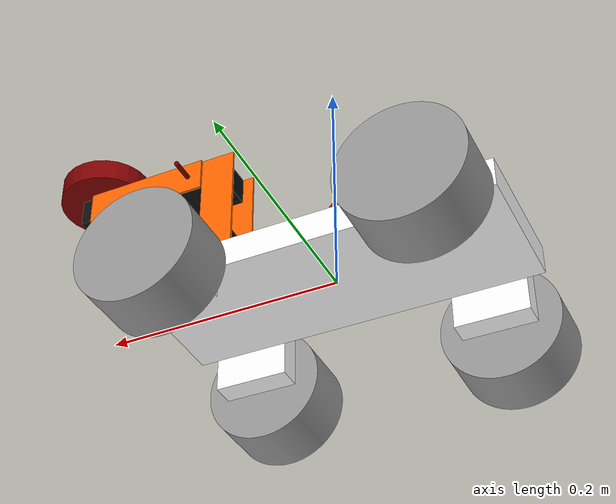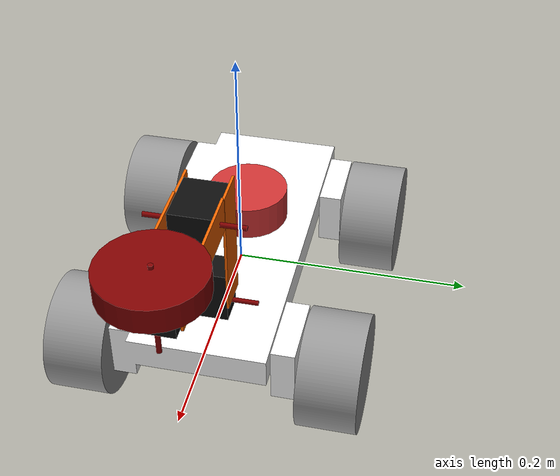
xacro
<?xml version="1.0"?>
<robot xmlns:xacro="http://www.ros.org/wiki/xacro">

    <xacro:include filename="lidar.xacro" />
    <xacro:include filename="wheels.xacro" />
    <xacro:include filename="arm.xacro" />

    <material name="chassis_material">
        <color rgba="1.0 1.0 1.0 1.0" />
    </material>

    <material name="wheel_material">
        <color rgba="0.6 0.6 0.6 1.0" />
    </material>

    <link name="base_link"/>

    <joint name="base_footprint_joint" type="fixed">
        <parent link="base_link"/>
        <child link="base_footprint"/>
        <origin xyz="0 0 0" rpy="0 0 0"/>
    </joint>

    <link name="base_footprint"/>

    <joint name="chassis_joint" type="fixed">
        <parent link="base_link"/>
        <child link="chassis"/>
        <origin xyz="0 0 0.0" rpy="0 0 ${-pi/2}"/>
    </joint>

    <link name="chassis">
        <inertial>
            <origin xyz="-7.066717348492194e-05 3.485618129802738e-05 0.00889428874586655" rpy="0 0 0"/>
            <mass value="2.985747783671821"/>
            <inertia ixx="0.025172" iyy="0.005971" izz="0.030362" ixy="-6e-06" iyz="2e-06" ixz="-2e-06"/>
        </inertial>
        <visual>
            <origin xyz="0 0 0" rpy="0 0 0"/>
            <geometry>
                <mesh filename="package://quac/meshes/base_link.stl" scale="${mesh_scale} ${mesh_scale} ${mesh_scale}"/>
            </geometry>
            <material name="chassis_material"/>
        </visual>
        <collision>
            <origin xyz="0 0 0" rpy="0 0 0"/>
            <geometry>
                <mesh filename="package://quac/meshes/base_link.stl" scale="${mesh_scale} ${mesh_scale} ${mesh_scale}"/>
            </geometry>
        </collision>
    </link>

    <gazebo reference="chassis">
        <material>Gazebo/White</material>
        <mu1>0.2</mu1>
        <mu2>0.2</mu2>
        <gravity>true</gravity>
    </gazebo>

</robot>

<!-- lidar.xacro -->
<robot xmlns:xacro="http://www.ros.org/wiki/xacro">

    <xacro:macro name="inertial_cylinder" params="mass length radius *origin">
        <inertial>
            <xacro:insert_block name="origin"/>
            <mass value="${mass}" />
            <inertia ixx="${(1/12) * mass * (3*radius*radius + length*length)}" ixy="0.0" ixz="0.0"
                    iyy="${(1/12) * mass * (3*radius*radius + length*length)}" iyz="0.0"
                    izz="${(1/2) * mass * (radius*radius)}" />
        </inertial>
    </xacro:macro>

    <material name="lidar_material">
        <color rgba="0.8 0.2 0.2 1.0" />
    </material>

    <joint name="lidar_joint" type="fixed">
        <parent link="chassis"/>
        <child link="lidar"/>
        <origin xyz="0.0 -0.03 0.04" rpy="0 0 ${-pi/2}"/>
    </joint>

    <link name="lidar">
        <visual>
            <geometry>
                <cylinder radius="0.035" length="0.03"/>
            </geometry>
            <material name="lidar_material"/>
        </visual>
        <collision>
            <geometry>
                <cylinder radius="0.035" length="0.03"/>
            </geometry>
        </collision>
        <xacro:inertial_cylinder mass="0.1" length="0.04" radius="0.05">
            <origin xyz="0 0 0" rpy="0 0 0"/>
        </xacro:inertial_cylinder>
    </link>

</robot>

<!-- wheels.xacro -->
<robot xmlns:xacro="http://www.ros.org/wiki/xacro">

    <xacro:property name="mesh_scale" value="0.001"/>

    <xacro:macro name="wheel" params="name joint_origin_xyz link_xyz mesh">
        <joint name="${name}_joint" type="continuous">
            <origin xyz="${joint_origin_xyz}" rpy="0 0 0"/>
            <parent link="chassis"/>
            <child link="${name}"/>
            <axis xyz="-1.0 0.0 0.0"/>
        </joint>

        <link name="${name}">
            <inertial>
                <origin xyz="0 0 0" rpy="0 0 0"/>
                <mass value="1.0708903957924194"/>
                <inertia ixx="0.001339" iyy="0.000897" izz="0.000897" ixy="0.0" iyz="0.0" ixz="0.0"/>
            </inertial>
            <visual>
                <origin xyz="${link_xyz}" rpy="0 0 0"/>
                <geometry>
                    <mesh filename="${mesh}" scale="${mesh_scale} ${mesh_scale} ${mesh_scale}"/>
                </geometry>
                <material name="wheel_material"/>
            </visual>
            <collision>
                <origin xyz="${link_xyz}" rpy="0 0 0"/>
                <geometry>
                    <mesh filename="${mesh}" scale="${mesh_scale} ${mesh_scale} ${mesh_scale}"/>
                </geometry>
            </collision>

            <gazebo>
                <mu1>0.2</mu1>       <!-- lateral friction -->
                <mu2>0.8</mu2>       <!-- longitudinal friction -->
                <fdir1>1 0 0</fdir1> <!-- wheel forward direction -->
                <slip1>0.1</slip1>  <!-- longitudinal slip tolerance -->
                <slip2>0.5</slip2>  <!-- lateral slip tolerance -->
                <turning_surface>false</turning_surface> <!-- optional -->
            </gazebo>

        </link>

        <gazebo reference="${name}">
            <material>Gazebo/Black</material>
        </gazebo>
    </xacro:macro>

    <!-- Four wheels -->

    <xacro:wheel
        name="wheel_rear_right"
        joint_origin_xyz="0.105 -0.104 -0.0183"
        link_xyz="-0.105 0.104 0.0183"
        mesh="package://quac/meshes/wheel.stl"
        />

    <xacro:wheel
        name="wheel_front_right"
        joint_origin_xyz="0.105 0.104 -0.0183"
        link_xyz="-0.105 -0.104 0.0183"
        mesh="package://quac/meshes/wheel_2.stl"
        />
    <xacro:wheel
        name="wheel_front_left"
        joint_origin_xyz="-0.105 0.104 -0.0183"
        link_xyz="0.105 -0.104 0.0183"
        mesh="package://quac/meshes/wheel_3.stl"
        />
    <xacro:wheel
        name="wheel_rear_left"
        joint_origin_xyz="-0.105 -0.104 -0.0183"
        link_xyz="0.105 0.104 0.0183"
        mesh="package://quac/meshes/wheel_4.stl"
        />

</robot>

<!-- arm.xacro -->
<!-- Minimal 2-servo arm, all joints rotate around X axis -->
<robot xmlns:xacro="http://www.ros.org/wiki/xacro">

    <xacro:include filename="inertial_macros.xacro" />

    <xacro:property name="servo_x" value="0.025"/>
    <xacro:property name="servo_y" value="0.035"/>
    <xacro:property name="servo_z" value="0.0455"/>

    <xacro:property name="plate_x" value="0.03" />
    <xacro:property name="plate_y" value="0.002" />
    <xacro:property name="plate_z" value="0.110" />

    <xacro:macro name="servo" params="servo_name">
        <link name="${servo_name}">
            <visual>
                <geometry>
                    <box size="${servo_x} ${servo_y} ${servo_z}" />
                </geometry>
                <material name="black" />
            </visual>
            <collision>
                <geometry>
                    <box size="${servo_x} ${servo_y} ${servo_z}" />
                </geometry>
            </collision>
            <xacro:inertial_box mass="0.1" x="${servo_x}" y="${servo_y}" z="${servo_z}">
                <origin xyz="0 0 0" rpy="0 0 0"/>
            </xacro:inertial_box>
        </link>
    </xacro:macro>

    <xacro:macro name="plate" params="plate_name">
        <link name="${plate_name}">
            <visual>
                <geometry>
                    <box size="${plate_x} ${plate_y} ${plate_z}" />
                </geometry>
                <material name="orange" />
            </visual>
            <collision>
                <geometry>
                    <box size="${plate_x} ${plate_y} ${plate_z}" />
                </geometry>
            </collision>
            <xacro:inertial_box mass="0.1" x="${plate_x}" y="${plate_y}" z="${plate_z}">
                <origin xyz="0 0 0" rpy="0 0 0"/>
            </xacro:inertial_box>
        </link>
    </xacro:macro>

    <xacro:macro name="axis" params="axis_name">
        <link name="${axis_name}">
            <visual>
                <geometry>
                    <cylinder radius="0.002" length="0.08" />
                </geometry>
                <material name="red" />
            </visual>
            <xacro:inertial_cylinder mass="0.1" length="0.08" radius="0.002">
                <origin xyz="0 0 0" rpy="0 0 0"/>
            </xacro:inertial_cylinder>
        </link>
    </xacro:macro>

    <!-- Materials -->
    <material name="black">
        <color rgba="0.05 0.05 0.05 1.0" />
    </material>
    <material name="black_tr">
        <color rgba="0.05 0.05 0.05 0.5" />
    </material>
    <material name="red">
        <color rgba="0.5 0.00 0.00 1.0" />
    </material>
    <material name="orange">
        <color rgba="1.0 0.4 0.0 1.0" />
    </material>

    <!-- Base axis (dummy) -->
    <xacro:axis axis_name="base_axis"/>

    <joint name="base_axis_to_base_link" type="fixed">
        <parent link="base_link" />
        <child link="base_axis" />
        <!-- offset so rotation is not through servo center -->
        <origin xyz="0.1 0.00 0.04" rpy="${-pi/2} 0 0" />
    </joint>
    <!-- Servo 1 axis (dummy) -->
    <xacro:axis axis_name="servo_1_axis"/>

    <joint name="joint1" type="revolute">
        <parent link="base_axis" />
        <child link="servo_1_axis" />
        <!-- offset so rotation is not through servo center -->
        <origin xyz="0. 0 0" rpy="0 0 0" />
        <axis xyz="0 0 1" />
        <limit lower="-1.57" upper="1.57" effort="1" velocity="1" />
    </joint>

    <xacro:servo servo_name="servo_1"/>

    <!-- Servo 1               -->

    <joint name="base_to_servo_1" type="fixed">
        <parent link="servo_1_axis" />
        <child link="servo_1" />
        <!-- mounted on the side of the base -->
        <origin xyz="0.00 -0.011375 0.0" rpy="1.570796327 0 0" />
        <axis xyz="0 1 0" />
        <limit lower="-1.57" upper="1.57" effort="1" velocity="1" />
    </joint>

    <!-- Plate 1 (side-mounted) -->
    <xacro:plate plate_name="plate_1"/>

    <joint name="servo_1_to_plate_1" type="fixed">
        <parent link="servo_1" />
        <child link="plate_1" />
        <!-- plate flush with servo side (sandwich-style) -->
        <origin xyz="0.0 0.0185 0.0475" rpy="0 0 0" />
    </joint>

    <!-- Plate 2 (side-mounted) -->
    <xacro:plate plate_name="plate_2"/>

    <joint name="servo_1_to_plate_2" type="fixed">
        <parent link="servo_1" />
        <child link="plate_2" />
        <!-- plate flush with servo side (sandwich-style) -->
        <origin xyz="0 -0.0185 0.0475" rpy="0 0 0" />
    </joint>

    <!-- Servo 2               -->
    <xacro:servo servo_name="servo_2"/>

    <joint name="plate_1_to_servo_2" type="fixed">
        <parent link="plate_1" />
        <child link="servo_2" />
        <origin xyz="0.0175 -0.0185 0.0425" rpy="0 -1.570796327 0" />
    </joint>

    <!-- Servo 2 axis (dummy) -->
    <xacro:axis axis_name="servo_2_axis"/>

    <joint name="servo_2_axis_to_servo_2" type="fixed">
        <parent link="servo_2" />
        <child link="servo_2_axis" />
        <!-- offset so rotation is not through servo center -->
        <origin xyz="0 0 -0.011375" rpy="-1.570796327 0 0" />
    </joint>

    <!-- Plate 3 (side-mounted) -->
    <xacro:plate plate_name="plate_3"/>

    <joint name="plate_3_axis_to_plate_3" type="fixed">
        <parent link="plate_3_axis" />
        <child link="plate_3" />
        <origin xyz="-0.0425 0 0.0185" rpy="-1.570796327 0 -1.570796327" />
    </joint>
    <!-- Servo 3               -->
    <xacro:servo servo_name="servo_3"/>

    <joint name="plate_3_to_servo_3" type="fixed">
        <parent link="plate_3" />
        <child link="servo_3" />
        <origin xyz="0 0.0185 -0.0425" rpy="0 0 0" />
    </joint>
    <!-- Plate 4 (side-mounted) -->
    <xacro:plate plate_name="plate_4"/>

    <joint name="servo_3_axis_to_plate_4" type="fixed">
        <parent link="servo_3" />
        <child link="plate_4" />
        <origin xyz="0 0.0185 0.0425" rpy="0 0 0" />
    </joint>

    <!-- Servo 3 axis (dummy) -->
    <xacro:axis axis_name="servo_3_axis"/>

    <joint name="servo_3_to_servo_3_axis" type="fixed">
        <parent link="servo_3" />
        <child link="servo_3_axis" />
        <!-- offset so rotation is not through servo center -->
        <origin xyz="0.00 0 -0.01137" rpy="0 -1.570796327 0" />
    </joint>

    <!-- Plate 3 axis (dummy) -->
    <xacro:axis axis_name="plate_3_axis"/>

    <joint name="joint2" type="revolute">
        <parent link="servo_2_axis" />
        <child link="plate_3_axis" />
        <!-- offset so rotation is not through servo center -->
        <origin xyz="0.00 0 0.00" rpy="0 0 -1.570796327" />
        <axis xyz="0 0 1" />
        <limit lower="-1.57" upper="1.57" effort="1" velocity="1" />
    </joint>

    <!-- Gripper Gear (dummy) -->
    <link name="gripper_gear">
        <visual>
            <geometry>
                <cylinder radius="0.04" length="0.02" />
            </geometry>
            <material name="red" />
        </visual>
        <collision>
            <geometry>
                <cylinder radius="0.02" length="0.02" />
            </geometry>
        </collision>
        <xacro:inertial_cylinder mass="0.1" length="0.04" radius="0.02">
            <origin xyz="0 0 0" rpy="0 0 0"/>
        </xacro:inertial_cylinder>
    </link>

    <joint name="joint3" type="revolute">
        <parent link="servo_3_axis" />
        <child link="gripper_gear" />
        <!-- offset so rotation is not through servo center -->
        <origin xyz="0.00 0 0.027" rpy="0 0 -1.570796327" />
        <axis xyz="0 0 1" />
        <limit lower="-1.57" upper="1.57" effort="1" velocity="1" />
    </joint>

</robot>
